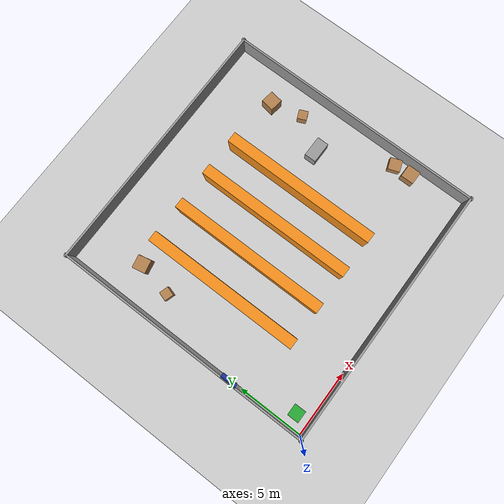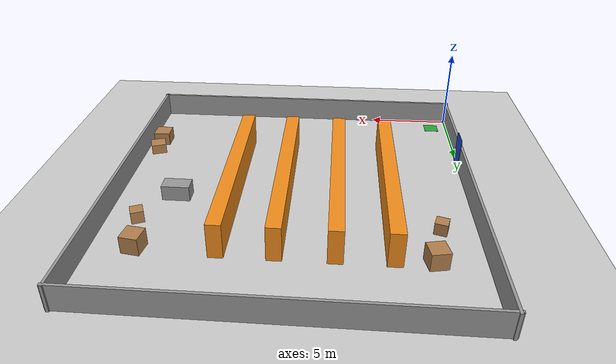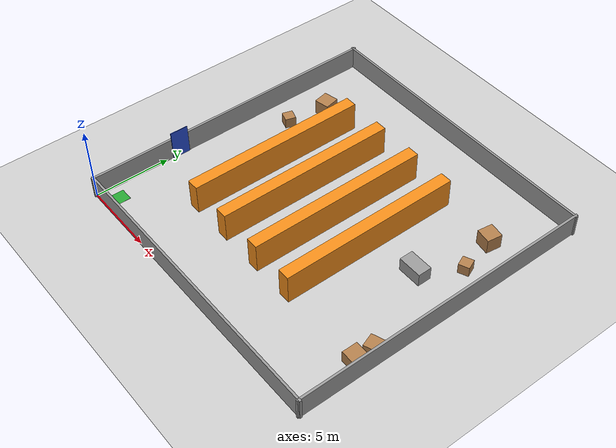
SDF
<?xml version="1.0"?>
<sdf version="1.6">
  <world name="pde4445_warehouse">
    <include><uri>model://ground_plane</uri></include>
    <include><uri>model://sun</uri></include>

    <scene>
      <ambient>0.6 0.6 0.6 1</ambient>
      <background>0.75 0.8 0.85 1</background>
      <shadows>false</shadows>
    </scene>

    <physics type="ode">
      <real_time_update_rate>1000.0</real_time_update_rate>
      <max_step_size>0.001</max_step_size>
    </physics>

    <!-- ==================== perimeter walls ==================== -->
    <model name="wall_south">
      <static>true</static>
      <pose>10 0 0.75 0 0 0</pose>
      <link name="link">
        <collision name="c"><geometry><box><size>20.3 0.15 1.5</size></box></geometry></collision>
        <visual name="v"><geometry><box><size>20.3 0.15 1.5</size></box></geometry>
          <material><script><uri>file://media/materials/scripts/gazebo.material</uri><name>Gazebo/Grey</name></script></material>
        </visual>
      </link>
    </model>
    <model name="wall_north">
      <static>true</static>
      <pose>10 20 0.75 0 0 0</pose>
      <link name="link">
        <collision name="c"><geometry><box><size>20.3 0.15 1.5</size></box></geometry></collision>
        <visual name="v"><geometry><box><size>20.3 0.15 1.5</size></box></geometry>
          <material><script><uri>file://media/materials/scripts/gazebo.material</uri><name>Gazebo/Grey</name></script></material>
        </visual>
      </link>
    </model>
    <model name="wall_west">
      <static>true</static>
      <pose>0 10 0.75 0 0 1.5708</pose>
      <link name="link">
        <collision name="c"><geometry><box><size>20.3 0.15 1.5</size></box></geometry></collision>
        <visual name="v"><geometry><box><size>20.3 0.15 1.5</size></box></geometry>
          <material><script><uri>file://media/materials/scripts/gazebo.material</uri><name>Gazebo/Grey</name></script></material>
        </visual>
      </link>
    </model>
    <model name="wall_east">
      <static>true</static>
      <pose>20 10 0.75 0 0 1.5708</pose>
      <link name="link">
        <collision name="c"><geometry><box><size>20.3 0.15 1.5</size></box></geometry></collision>
        <visual name="v"><geometry><box><size>20.3 0.15 1.5</size></box></geometry>
          <material><script><uri>file://media/materials/scripts/gazebo.material</uri><name>Gazebo/Grey</name></script></material>
        </visual>
      </link>
    </model>

    <!-- office door: blue panel on the west wall at y=6 (visual landmark only) -->
    <model name="office_door_panel">
      <static>true</static>
      <pose>0.09 6 1.0 0 0 1.5708</pose>
      <link name="link">
        <visual name="v"><geometry><box><size>1.2 0.05 2.0</size></box></geometry>
          <material><script><uri>file://media/materials/scripts/gazebo.material</uri><name>Gazebo/Blue</name></script></material>
        </visual>
      </link>
    </model>

    <!-- ==================== shelving: 4 rows -> aisles at x=6, 9, 12 ==================== -->
    <!-- rows are 0.8 wide x 12 long (y=4..16), 2m tall -->
    <model name="shelf_row_1">
      <static>true</static>
      <pose>4.6 10 1.0 0 0 0</pose>
      <link name="link">
        <collision name="c"><geometry><box><size>0.8 12 2.0</size></box></geometry></collision>
        <visual name="v"><geometry><box><size>0.8 12 2.0</size></box></geometry>
          <material><script><uri>file://media/materials/scripts/gazebo.material</uri><name>Gazebo/Orange</name></script></material>
        </visual>
      </link>
    </model>
    <model name="shelf_row_2">
      <static>true</static>
      <pose>7.5 10 1.0 0 0 0</pose>
      <link name="link">
        <collision name="c"><geometry><box><size>0.8 12 2.0</size></box></geometry></collision>
        <visual name="v"><geometry><box><size>0.8 12 2.0</size></box></geometry>
          <material><script><uri>file://media/materials/scripts/gazebo.material</uri><name>Gazebo/Orange</name></script></material>
        </visual>
      </link>
    </model>
    <model name="shelf_row_3">
      <static>true</static>
      <pose>10.5 10 1.0 0 0 0</pose>
      <link name="link">
        <collision name="c"><geometry><box><size>0.8 12 2.0</size></box></geometry></collision>
        <visual name="v"><geometry><box><size>0.8 12 2.0</size></box></geometry>
          <material><script><uri>file://media/materials/scripts/gazebo.material</uri><name>Gazebo/Orange</name></script></material>
        </visual>
      </link>
    </model>
    <model name="shelf_row_4">
      <static>true</static>
      <pose>13.4 10 1.0 0 0 0</pose>
      <link name="link">
        <collision name="c"><geometry><box><size>0.8 12 2.0</size></box></geometry></collision>
        <visual name="v"><geometry><box><size>0.8 12 2.0</size></box></geometry>
          <material><script><uri>file://media/materials/scripts/gazebo.material</uri><name>Gazebo/Orange</name></script></material>
        </visual>
      </link>
    </model>

    <!-- ==================== props (offset from semantic targets) ==================== -->
    <!-- charging dock marker: flat green pad under the home position -->
    <model name="charging_pad">
      <static>true</static>
      <pose>1 1 0.005 0 0 0</pose>
      <link name="link">
        <visual name="v"><geometry><box><size>0.9 0.9 0.01</size></box></geometry>
          <material><script><uri>file://media/materials/scripts/gazebo.material</uri><name>Gazebo/Green</name></script></material>
        </visual>
      </link>
    </model>

    <!-- loading dock: pallet boxes against the east wall, north of the (18,2) target -->
    <model name="pallet_dock_1">
      <static>true</static>
      <pose>19.2 4.3 0.4 0 0 0</pose>
      <link name="link">
        <collision name="c"><geometry><box><size>1.0 1.0 0.8</size></box></geometry></collision>
        <visual name="v"><geometry><box><size>1.0 1.0 0.8</size></box></geometry>
          <material><script><uri>file://media/materials/scripts/gazebo.material</uri><name>Gazebo/Wood</name></script></material>
        </visual>
      </link>
    </model>
    <model name="pallet_dock_2">
      <static>true</static>
      <pose>19.2 5.6 0.3 0 0 0.35</pose>
      <link name="link">
        <collision name="c"><geometry><box><size>0.9 0.9 0.6</size></box></geometry></collision>
        <visual name="v"><geometry><box><size>0.9 0.9 0.6</size></box></geometry>
          <material><script><uri>file://media/materials/scripts/gazebo.material</uri><name>Gazebo/Wood</name></script></material>
        </visual>
      </link>
    </model>

    <!-- packing station: work table east of the (15,10) target -->
    <model name="packing_table">
      <static>true</static>
      <pose>16.6 10.8 0.45 0 0 0</pose>
      <link name="link">
        <collision name="c"><geometry><box><size>1.6 0.9 0.9</size></box></geometry></collision>
        <visual name="v"><geometry><box><size>1.6 0.9 0.9</size></box></geometry>
          <material><script><uri>file://media/materials/scripts/gazebo.material</uri><name>Gazebo/Grey</name></script></material>
        </visual>
      </link>
    </model>

    <!-- storage zone A (NW): crate stacks north-west of the (4,14) target -->
    <model name="crates_a1">
      <static>true</static>
      <pose>2.6 15.6 0.5 0 0 0.2</pose>
      <link name="link">
        <collision name="c"><geometry><box><size>1.0 1.0 1.0</size></box></geometry></collision>
        <visual name="v"><geometry><box><size>1.0 1.0 1.0</size></box></geometry>
          <material><script><uri>file://media/materials/scripts/gazebo.material</uri><name>Gazebo/Wood</name></script></material>
        </visual>
      </link>
    </model>
    <model name="crates_a2">
      <static>true</static>
      <pose>2.0 13.0 0.35 0 0 -0.3</pose>
      <link name="link">
        <collision name="c"><geometry><box><size>0.7 0.7 0.7</size></box></geometry></collision>
        <visual name="v"><geometry><box><size>0.7 0.7 0.7</size></box></geometry>
          <material><script><uri>file://media/materials/scripts/gazebo.material</uri><name>Gazebo/Wood</name></script></material>
        </visual>
      </link>
    </model>

    <!-- storage zone B (NE): crate stacks north-east of the (16,14) target -->
    <model name="crates_b1">
      <static>true</static>
      <pose>17.6 15.6 0.5 0 0 -0.15</pose>
      <link name="link">
        <collision name="c"><geometry><box><size>1.0 1.0 1.0</size></box></geometry></collision>
        <visual name="v"><geometry><box><size>1.0 1.0 1.0</size></box></geometry>
          <material><script><uri>file://media/materials/scripts/gazebo.material</uri><name>Gazebo/Wood</name></script></material>
        </visual>
      </link>
    </model>
    <model name="crates_b2">
      <static>true</static>
      <pose>18.2 13.2 0.35 0 0 0.4</pose>
      <link name="link">
        <collision name="c"><geometry><box><size>0.7 0.7 0.7</size></box></geometry></collision>
        <visual name="v"><geometry><box><size>0.7 0.7 0.7</size></box></geometry>
          <material><script><uri>file://media/materials/scripts/gazebo.material</uri><name>Gazebo/Wood</name></script></material>
        </visual>
      </link>
    </model>

    <gui>
      <camera name="user_camera">
        <pose>10 -6 18 0 0.9 1.5708</pose>
      </camera>
    </gui>
  </world>
</sdf>
